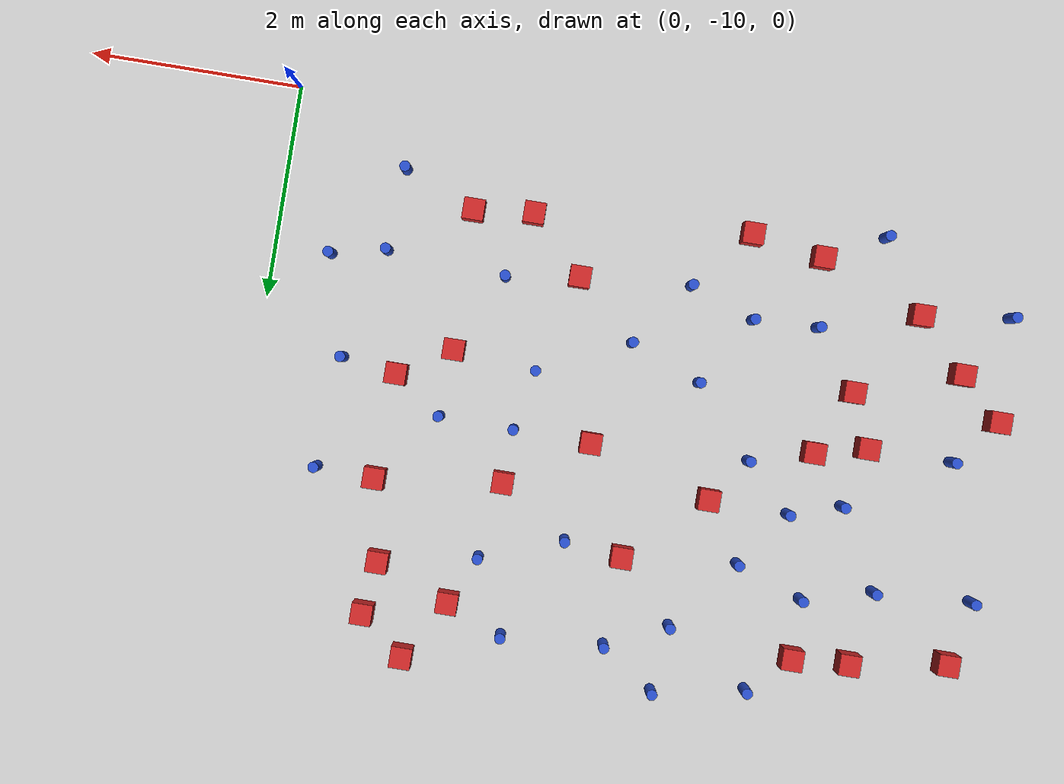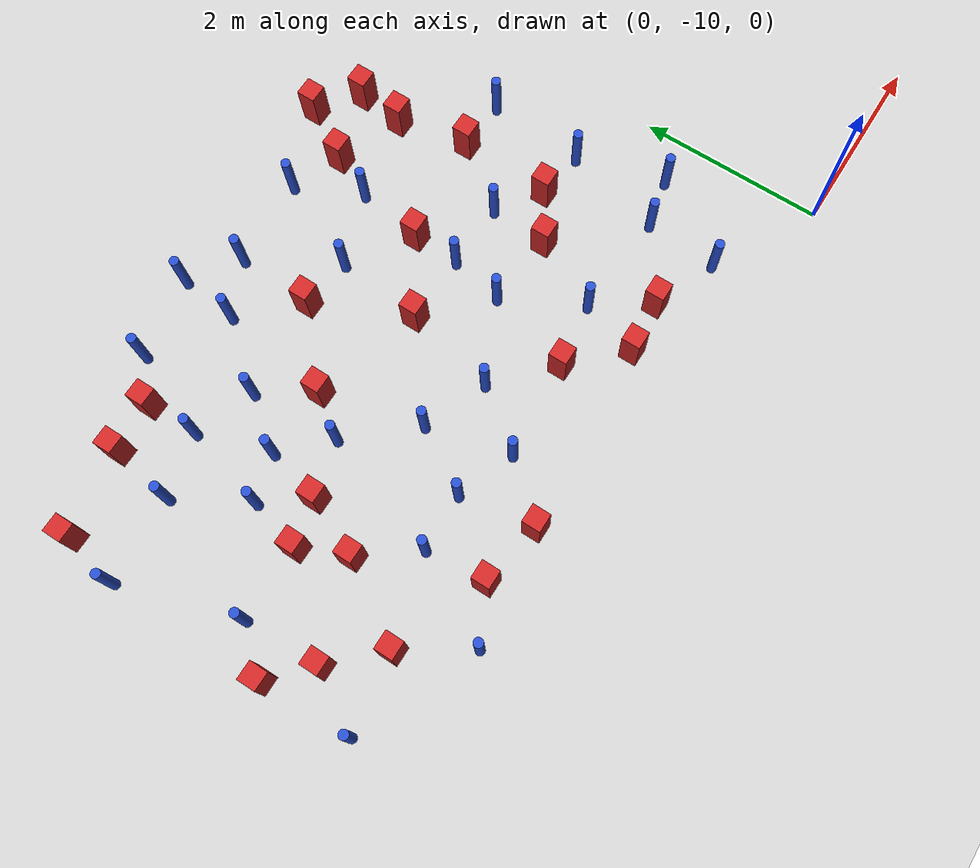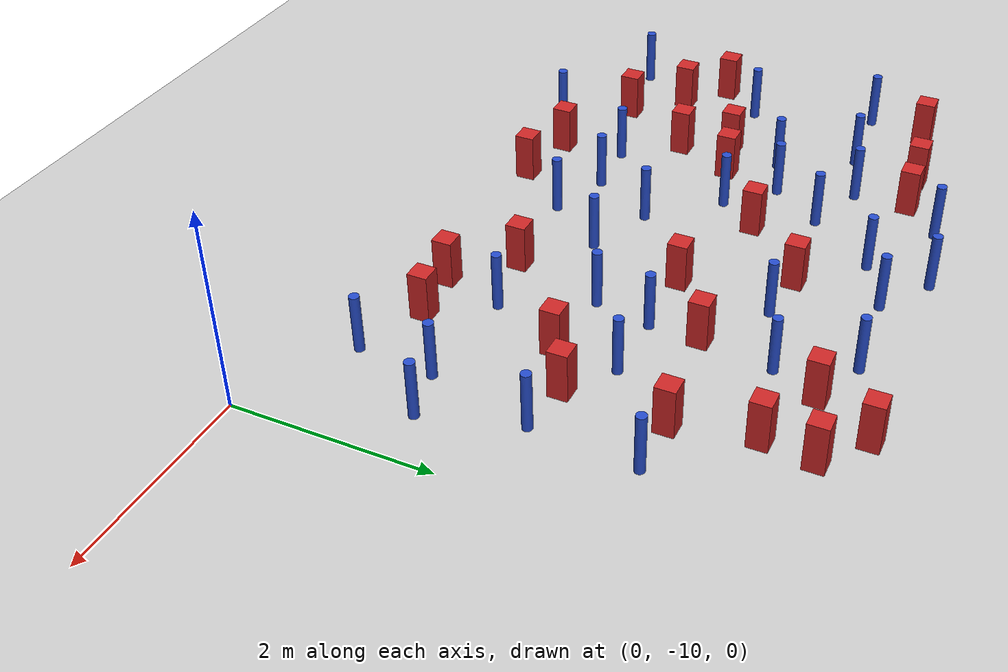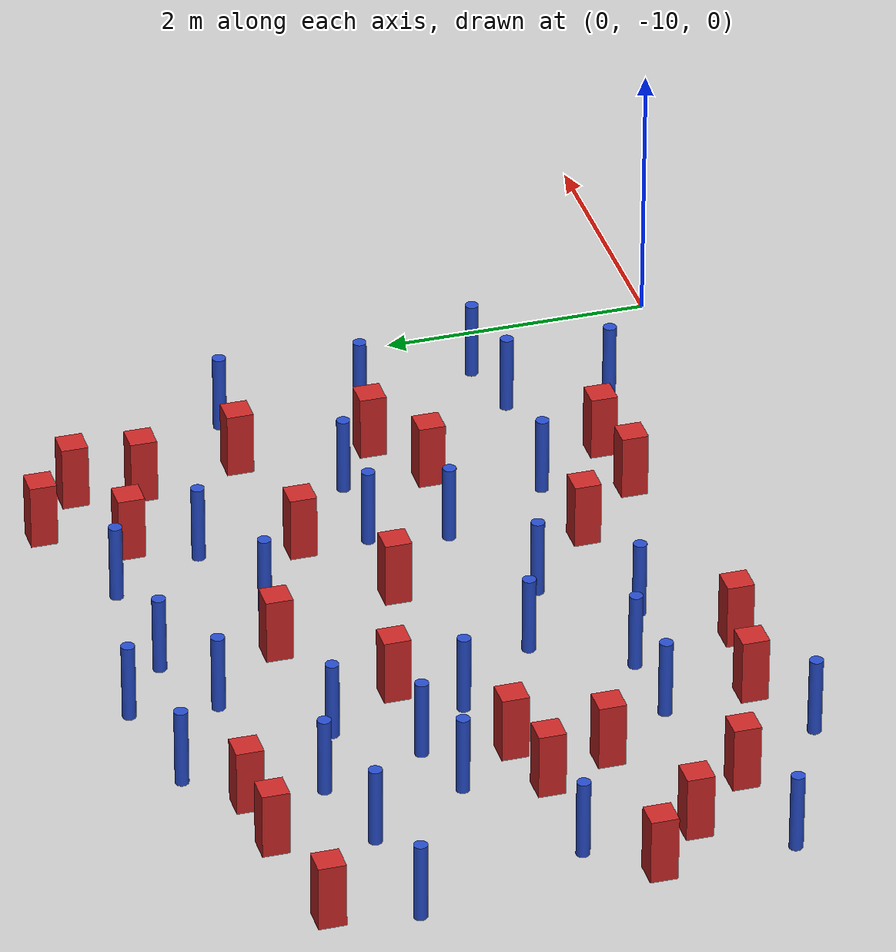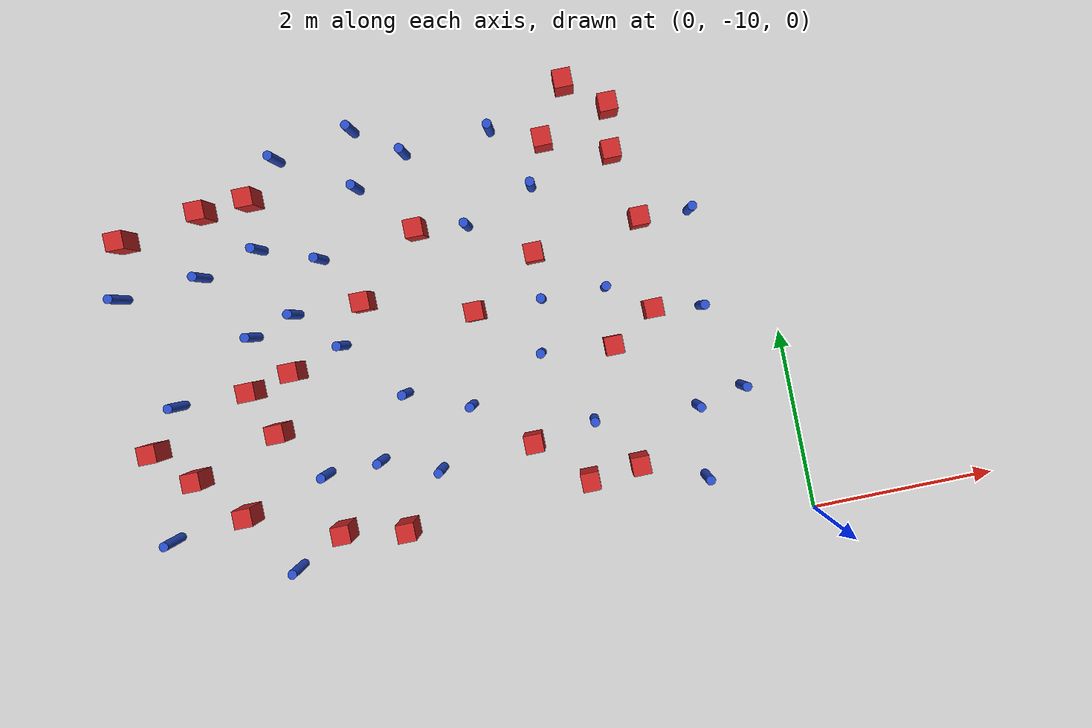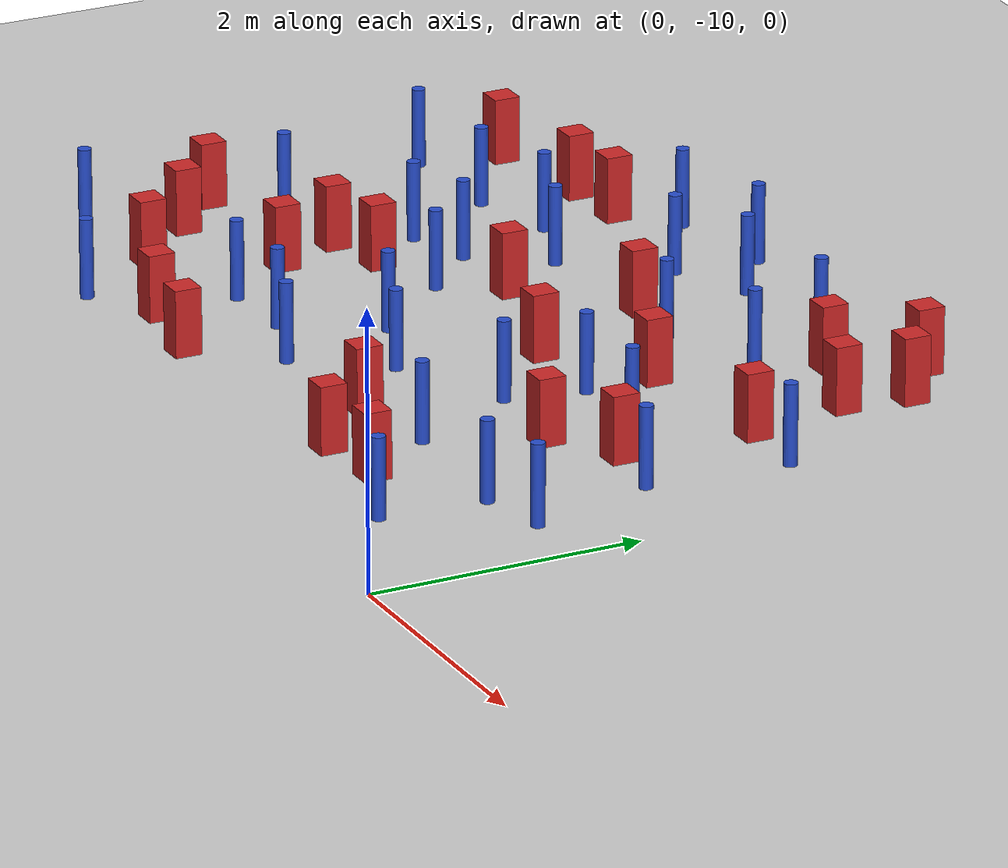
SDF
<sdf version="1.6">
 <world name="default">
  <model name="ground_plane">
   <static>1</static>
   <link name="link">
    <collision name="collision">
     <geometry><plane><normal>0 0 1</normal><size>100 100</size></plane></geometry>
     <surface><friction><ode><mu>100</mu><mu2>50</mu2></ode></friction></surface>
    </collision>
    <visual name="visual">
     <cast_shadows>0</cast_shadows>
     <geometry><plane><normal>0 0 1</normal><size>100 100</size></plane></geometry>
     <material>
      <ambient>1.0 1.0 1.0 1.0</ambient>
      <diffuse>0.8 0.8 0.8 1.0</diffuse>
      <specular>0.01 0.01 0.01 1.000000</specular>
     </material>
    </visual>
   </link>
  </model>
  <model name="square_post_obstacle4">
   <static>true</static>
   <pose>-6.85522388326 -5.62847621631 8.22691968438e-08 7.22125133819e-06 -7.54495500217e-07 2.29674213826e-05</pose>
   <link name="link">
    <pose>0 0 0.25 0 -0 0</pose>
    <inertial>
     <mass>100</mass>
     <inertia>
      <ixx>0.166667</ixx>
      <ixy>0</ixy>
      <ixz>0</ixz>
      <iyy>0.166667</iyy>
      <iyz>0</iyz>
      <izz>0.166667</izz>
     </inertia>
    </inertial>
    <collision name="collision"><geometry><box><size>.2 .2 .5</size></box></geometry></collision>
    <visual name="visual">
     <geometry><box><size>.2 .2 .5</size></box></geometry>
     <material>
      <script><name>Gazebo/Red</name><uri>file://media/materials/scripts/gazebo.material</uri></script>
     </material>
    </visual>
   </link>
  </model>
  <model name="pole_obstacle9">
   <static>true</static>
   <pose>-1.1136684123 -9.39230906978 2.88873142074e-08 -9.90536690474e-09 4.60219948974e-07 -1.2096599497e-07</pose>
   <link name="link">
    <pose>0 0 0.3 0 -0 0</pose>
    <inertial>
     <mass>1</mass>
     <inertia><ixx>0.145833</ixx><ixy>0</ixy><ixz>0</ixz><iyy>0.145833</iyy><iyz>0</iyz><izz>0.125</izz></inertia>
    </inertial>
    <collision name="collision">
     <geometry><cylinder><radius>0.05</radius><length>.6</length></cylinder></geometry>
    </collision>
    <visual name="visual">
     <geometry><cylinder><radius>0.05</radius><length>.6</length></cylinder></geometry>
     <material>
      <script><name>Gazebo/Blue</name><uri>file://media/materials/scripts/gazebo.material</uri></script>
     </material>
    </visual>
   </link>
  </model>
  <model name="square_post_obstacle8">
   <static>true</static>
   <pose>-5.94740173558 -5.48273162042 8.22691968438e-08 7.22125133819e-06 -7.54495500217e-07 2.29674213826e-05</pose>
   <link name="link">
    <pose>0 0 0.25 0 -0 0</pose>
    <inertial>
     <mass>100</mass>
     <inertia>
      <ixx>0.166667</ixx>
      <ixy>0</ixy>
      <ixz>0</ixz>
      <iyy>0.166667</iyy>
      <iyz>0</iyz>
      <izz>0.166667</izz>
     </inertia>
    </inertial>
    <collision name="collision"><geometry><box><size>.2 .2 .5</size></box></geometry></collision>
    <visual name="visual">
     <geometry><box><size>.2 .2 .5</size></box></geometry>
     <material>
      <script><name>Gazebo/Red</name><uri>file://media/materials/scripts/gazebo.material</uri></script>
     </material>
    </visual>
   </link>
  </model>
  <model name="square_post_obstacle10">
   <static>true</static>
   <pose>-3.69143356227 -6.1247353923 8.22691968438e-08 7.22125133819e-06 -7.54495500217e-07 2.29674213826e-05</pose>
   <link name="link">
    <pose>0 0 0.25 0 -0 0</pose>
    <inertial>
     <mass>100</mass>
     <inertia>
      <ixx>0.166667</ixx>
      <ixy>0</ixy>
      <ixz>0</ixz>
      <iyy>0.166667</iyy>
      <iyz>0</iyz>
      <izz>0.166667</izz>
     </inertia>
    </inertial>
    <collision name="collision"><geometry><box><size>.2 .2 .5</size></box></geometry></collision>
    <visual name="visual">
     <geometry><box><size>.2 .2 .5</size></box></geometry>
     <material>
      <script><name>Gazebo/Red</name><uri>file://media/materials/scripts/gazebo.material</uri></script>
     </material>
    </visual>
   </link>
  </model>
  <model name="pole_obstacle14">
   <static>true</static>
   <pose>-5.16681830971 -6.7704141858 2.88873142074e-08 -9.90536690842e-09 4.60219948965e-07 -1.20965994976e-07</pose>
   <link name="link">
    <pose>0 0 0.3 0 -0 0</pose>
    <inertial>
     <mass>1</mass>
     <inertia><ixx>0.145833</ixx><ixy>0</ixy><ixz>0</ixz><iyy>0.145833</iyy><iyz>0</iyz><izz>0.125</izz></inertia>
    </inertial>
    <collision name="collision">
     <geometry><cylinder><radius>0.05</radius><length>.6</length></cylinder></geometry>
    </collision>
    <visual name="visual">
     <geometry><cylinder><radius>0.05</radius><length>.6</length></cylinder></geometry>
     <material>
      <script><name>Gazebo/Blue</name><uri>file://media/materials/scripts/gazebo.material</uri></script>
     </material>
    </visual>
   </link>
  </model>
  <model name="pole_obstacle15">
   <static>true</static>
   <pose>-4.23528248232 -5.55599287549 2.88873142074e-08 -9.90536690842e-09 4.60219948965e-07 -1.20965994976e-07</pose>
   <link name="link">
    <pose>0 0 0.3 0 -0 0</pose>
    <inertial>
     <mass>1</mass>
     <inertia><ixx>0.145833</ixx><ixy>0</ixy><ixz>0</ixz><iyy>0.145833</iyy><iyz>0</iyz><izz>0.125</izz></inertia>
    </inertial>
    <collision name="collision">
     <geometry><cylinder><radius>0.05</radius><length>.6</length></cylinder></geometry>
    </collision>
    <visual name="visual">
     <geometry><cylinder><radius>0.05</radius><length>.6</length></cylinder></geometry>
     <material>
      <script><name>Gazebo/Blue</name><uri>file://media/materials/scripts/gazebo.material</uri></script>
     </material>
    </visual>
   </link>
  </model>
  <model name="pole_obstacle17">
   <static>true</static>
   <pose>-3.46691316281 -8.12460057241 2.88873142074e-08 -9.90536692318e-09 4.6021994893e-07 -1.20965994988e-07</pose>
   <link name="link">
    <pose>0 0 0.3 0 -0 0</pose>
    <inertial>
     <mass>1</mass>
     <inertia><ixx>0.145833</ixx><ixy>0</ixy><ixz>0</ixz><iyy>0.145833</iyy><iyz>0</iyz><izz>0.125</izz></inertia>
    </inertial>
    <collision name="collision">
     <geometry><cylinder><radius>0.05</radius><length>.6</length></cylinder></geometry>
    </collision>
    <visual name="visual">
     <geometry><cylinder><radius>0.05</radius><length>.6</length></cylinder></geometry>
     <material>
      <script><name>Gazebo/Blue</name><uri>file://media/materials/scripts/gazebo.material</uri></script>
     </material>
    </visual>
   </link>
  </model>
  <model name="square_post_obstacle25">
   <static>true</static>
   <pose>-6.09771948363 -8.8133086997 8.22691968438e-08 7.22125133819e-06 -7.54495500217e-07 2.29674213826e-05</pose>
   <link name="link">
    <pose>0 0 0.25 0 -0 0</pose>
    <inertial>
     <mass>100</mass>
     <inertia>
      <ixx>0.166667</ixx>
      <ixy>0</ixy>
      <ixz>0</ixz>
      <iyy>0.166667</iyy>
      <iyz>0</iyz>
      <izz>0.166667</izz>
     </inertia>
    </inertial>
    <collision name="collision"><geometry><box><size>.2 .2 .5</size></box></geometry></collision>
    <visual name="visual">
     <geometry><box><size>.2 .2 .5</size></box></geometry>
     <material>
      <script><name>Gazebo/Red</name><uri>file://media/materials/scripts/gazebo.material</uri></script>
     </material>
    </visual>
   </link>
  </model>
  <model name="pole_obstacle34">
   <static>true</static>
   <pose>-6.60826253729 -7.50212114259 2.88873142074e-08 -9.90536690842e-09 4.60219948965e-07 -1.20965994976e-07</pose>
   <link name="link">
    <pose>0 0 0.3 0 -0 0</pose>
    <inertial>
     <mass>1</mass>
     <inertia><ixx>0.145833</ixx><ixy>0</ixy><ixz>0</ixz><iyy>0.145833</iyy><iyz>0</iyz><izz>0.125</izz></inertia>
    </inertial>
    <collision name="collision">
     <geometry><cylinder><radius>0.05</radius><length>.6</length></cylinder></geometry>
    </collision>
    <visual name="visual">
     <geometry><cylinder><radius>0.05</radius><length>.6</length></cylinder></geometry>
     <material>
      <script><name>Gazebo/Blue</name><uri>file://media/materials/scripts/gazebo.material</uri></script>
     </material>
    </visual>
   </link>
  </model>
  <model name="pole_obstacle40">
   <static>true</static>
   <pose>-4.77382062797 -6.23509874252 2.88873142074e-08 -9.90536690842e-09 4.60219948965e-07 -1.20965994976e-07</pose>
   <link name="link">
    <pose>0 0 0.3 0 -0 0</pose>
    <inertial>
     <mass>1</mass>
     <inertia><ixx>0.145833</ixx><ixy>0</ixy><ixz>0</ixz><iyy>0.145833</iyy><iyz>0</iyz><izz>0.125</izz></inertia>
    </inertial>
    <collision name="collision">
     <geometry><cylinder><radius>0.05</radius><length>.6</length></cylinder></geometry>
    </collision>
    <visual name="visual">
     <geometry><cylinder><radius>0.05</radius><length>.6</length></cylinder></geometry>
     <material>
      <script><name>Gazebo/Blue</name><uri>file://media/materials/scripts/gazebo.material</uri></script>
     </material>
    </visual>
   </link>
  </model>
  <model name="pole_obstacle42">
   <static>true</static>
   <pose>-4.14624531875 -7.8563380959 2.88873142074e-08 -9.90536690842e-09 4.60219948965e-07 -1.20965994976e-07</pose>
   <link name="link">
    <pose>0 0 0.3 0 -0 0</pose>
    <inertial>
     <mass>1</mass>
     <inertia><ixx>0.145833</ixx><ixy>0</ixy><ixz>0</ixz><iyy>0.145833</iyy><iyz>0</iyz><izz>0.125</izz></inertia>
    </inertial>
    <collision name="collision">
     <geometry><cylinder><radius>0.05</radius><length>.6</length></cylinder></geometry>
    </collision>
    <visual name="visual">
     <geometry><cylinder><radius>0.05</radius><length>.6</length></cylinder></geometry>
     <material>
      <script><name>Gazebo/Blue</name><uri>file://media/materials/scripts/gazebo.material</uri></script>
     </material>
    </visual>
   </link>
  </model>
  <model name="pole_obstacle44">
   <static>true</static>
   <pose>-0.538254082828 -8.49658072212 2.88873142074e-08 -9.90536691171e-09 4.60219948957e-07 -1.20965994981e-07</pose>
   <link name="link">
    <pose>0 0 0.3 0 -0 0</pose>
    <inertial>
     <mass>1</mass>
     <inertia><ixx>0.145833</ixx><ixy>0</ixy><ixz>0</ixz><iyy>0.145833</iyy><iyz>0</iyz><izz>0.125</izz></inertia>
    </inertial>
    <collision name="collision">
     <geometry><cylinder><radius>0.05</radius><length>.6</length></cylinder></geometry>
    </collision>
    <visual name="visual">
     <geometry><cylinder><radius>0.05</radius><length>.6</length></cylinder></geometry>
     <material>
      <script><name>Gazebo/Blue</name><uri>file://media/materials/scripts/gazebo.material</uri></script>
     </material>
    </visual>
   </link>
  </model>
  <model name="square_post_obstacle35">
   <static>true</static>
   <pose>-1.28788467197 -6.48226876722 8.22691968438e-08 7.2212513382e-06 -7.54495500217e-07 2.29674213826e-05</pose>
   <link name="link">
    <pose>0 0 0.25 0 -0 0</pose>
    <inertial>
     <mass>100</mass>
     <inertia>
      <ixx>0.166667</ixx>
      <ixy>0</ixy>
      <ixz>0</ixz>
      <iyy>0.166667</iyy>
      <iyz>0</iyz>
      <izz>0.166667</izz>
     </inertia>
    </inertial>
    <collision name="collision"><geometry><box><size>.2 .2 .5</size></box></geometry></collision>
    <visual name="visual">
     <geometry><box><size>.2 .2 .5</size></box></geometry>
     <material>
      <script><name>Gazebo/Red</name><uri>file://media/materials/scripts/gazebo.material</uri></script>
     </material>
    </visual>
   </link>
  </model>
  <model name="pole_obstacle62">
   <static>true</static>
   <pose>-3.65709495357 -5.27973603258 2.88873142074e-08 -9.90536692062e-09 4.60219948937e-07 -1.20965994985e-07</pose>
   <link name="link">
    <pose>0 0 0.3 0 -0 0</pose>
    <inertial>
     <mass>1</mass>
     <inertia><ixx>0.145833</ixx><ixy>0</ixy><ixz>0</ixz><iyy>0.145833</iyy><iyz>0</iyz><izz>0.125</izz></inertia>
    </inertial>
    <collision name="collision">
     <geometry><cylinder><radius>0.05</radius><length>.6</length></cylinder></geometry>
    </collision>
    <visual name="visual">
     <geometry><cylinder><radius>0.05</radius><length>.6</length></cylinder></geometry>
     <material>
      <script><name>Gazebo/Blue</name><uri>file://media/materials/scripts/gazebo.material</uri></script>
     </material>
    </visual>
   </link>
  </model>
  <model name="pole_obstacle63">
   <static>true</static>
   <pose>-5.66128667086 -9.48588784049 2.88873142074e-08 -9.9053668967e-09 4.60219948993e-07 -1.20965994957e-07</pose>
   <link name="link">
    <pose>0 0 0.3 0 -0 0</pose>
    <inertial>
     <mass>1</mass>
     <inertia><ixx>0.145833</ixx><ixy>0</ixy><ixz>0</ixz><iyy>0.145833</iyy><iyz>0</iyz><izz>0.125</izz></inertia>
    </inertial>
    <collision name="collision">
     <geometry><cylinder><radius>0.05</radius><length>.6</length></cylinder></geometry>
    </collision>
    <visual name="visual">
     <geometry><cylinder><radius>0.05</radius><length>.6</length></cylinder></geometry>
     <material>
      <script><name>Gazebo/Blue</name><uri>file://media/materials/scripts/gazebo.material</uri></script>
     </material>
    </visual>
   </link>
  </model>
  <model name="pole_obstacle65">
   <static>true</static>
   <pose>-0.804808147078 -7.55309677952 2.88873142074e-08 -9.90536689661e-09 4.60219948993e-07 -1.20965994957e-07</pose>
   <link name="link">
    <pose>0 0 0.3 0 -0 0</pose>
    <inertial>
     <mass>1</mass>
     <inertia><ixx>0.145833</ixx><ixy>0</ixy><ixz>0</ixz><iyy>0.145833</iyy><iyz>0</iyz><izz>0.125</izz></inertia>
    </inertial>
    <collision name="collision">
     <geometry><cylinder><radius>0.05</radius><length>.6</length></cylinder></geometry>
    </collision>
    <visual name="visual">
     <geometry><cylinder><radius>0.05</radius><length>.6</length></cylinder></geometry>
     <material>
      <script><name>Gazebo/Blue</name><uri>file://media/materials/scripts/gazebo.material</uri></script>
     </material>
    </visual>
   </link>
  </model>
  <model name="square_post_obstacle52">
   <static>true</static>
   <pose>-1.80784929938 -4.87397592157 8.22691968438e-08 7.2212513382e-06 -7.54495500217e-07 2.29674213826e-05</pose>
   <link name="link">
    <pose>0 0 0.25 0 -0 0</pose>
    <inertial>
     <mass>100</mass>
     <inertia>
      <ixx>0.166667</ixx>
      <ixy>0</ixy>
      <ixz>0</ixz>
      <iyy>0.166667</iyy>
      <iyz>0</iyz>
      <izz>0.166667</izz>
     </inertia>
    </inertial>
    <collision name="collision"><geometry><box><size>.2 .2 .5</size></box></geometry></collision>
    <visual name="visual">
     <geometry><box><size>.2 .2 .5</size></box></geometry>
     <material>
      <script><name>Gazebo/Red</name><uri>file://media/materials/scripts/gazebo.material</uri></script>
     </material>
    </visual>
   </link>
  </model>
  <model name="pole_obstacle71">
   <static>true</static>
   <pose>-1.79159454964 -7.15082651073 2.88873142074e-08 -9.90536689852e-09 4.60219948989e-07 -1.2096599496e-07</pose>
   <link name="link">
    <pose>0 0 0.3 0 -0 0</pose>
    <inertial>
     <mass>1</mass>
     <inertia><ixx>0.145833</ixx><ixy>0</ixy><ixz>0</ixz><iyy>0.145833</iyy><iyz>0</iyz><izz>0.125</izz></inertia>
    </inertial>
    <collision name="collision">
     <geometry><cylinder><radius>0.05</radius><length>.6</length></cylinder></geometry>
    </collision>
    <visual name="visual">
     <geometry><cylinder><radius>0.05</radius><length>.6</length></cylinder></geometry>
     <material>
      <script><name>Gazebo/Blue</name><uri>file://media/materials/scripts/gazebo.material</uri></script>
     </material>
    </visual>
   </link>
  </model>
  <model name="square_post_obstacle69">
   <static>true</static>
   <pose>-5.3090469905 -7.38036986138 8.22691968438e-08 7.22125133819e-06 -7.54495500217e-07 2.29674213826e-05</pose>
   <link name="link">
    <pose>0 0 0.25 0 -0 0</pose>
    <inertial>
     <mass>100</mass>
     <inertia>
      <ixx>0.166667</ixx>
      <ixy>0</ixy>
      <ixz>0</ixz>
      <iyy>0.166667</iyy>
      <iyz>0</iyz>
      <izz>0.166667</izz>
     </inertia>
    </inertial>
    <collision name="collision"><geometry><box><size>.2 .2 .5</size></box></geometry></collision>
    <visual name="visual">
     <geometry><box><size>.2 .2 .5</size></box></geometry>
     <material>
      <script><name>Gazebo/Red</name><uri>file://media/materials/scripts/gazebo.material</uri></script>
     </material>
    </visual>
   </link>
  </model>
  <model name="pole_obstacle82">
   <static>true</static>
   <pose>-2.49903152507 -7.13973045183 2.88873142074e-08 -9.90536689859e-09 4.60219948989e-07 -1.20965994961e-07</pose>
   <link name="link">
    <pose>0 0 0.3 0 -0 0</pose>
    <inertial>
     <mass>1</mass>
     <inertia><ixx>0.145833</ixx><ixy>0</ixy><ixz>0</ixz><iyy>0.145833</iyy><iyz>0</iyz><izz>0.125</izz></inertia>
    </inertial>
    <collision name="collision">
     <geometry><cylinder><radius>0.05</radius><length>.6</length></cylinder></geometry>
    </collision>
    <visual name="visual">
     <geometry><cylinder><radius>0.05</radius><length>.6</length></cylinder></geometry>
     <material>
      <script><name>Gazebo/Blue</name><uri>file://media/materials/scripts/gazebo.material</uri></script>
     </material>
    </visual>
   </link>
  </model>
  <model name="pole_obstacle88">
   <static>true</static>
   <pose>-6.99789093581 -6.23372935223 2.88873142074e-08 -9.90536690842e-09 4.60219948965e-07 -1.20965994976e-07</pose>
   <link name="link">
    <pose>0 0 0.3 0 -0 0</pose>
    <inertial>
     <mass>1</mass>
     <inertia><ixx>0.145833</ixx><ixy>0</ixy><ixz>0</ixz><iyy>0.145833</iyy><iyz>0</iyz><izz>0.125</izz></inertia>
    </inertial>
    <collision name="collision">
     <geometry><cylinder><radius>0.05</radius><length>.6</length></cylinder></geometry>
    </collision>
    <visual name="visual">
     <geometry><cylinder><radius>0.05</radius><length>.6</length></cylinder></geometry>
     <material>
      <script><name>Gazebo/Blue</name><uri>file://media/materials/scripts/gazebo.material</uri></script>
     </material>
    </visual>
   </link>
  </model>
  <model name="square_post_obstacle81">
   <static>true</static>
   <pose>-2.88410339345 -8.65131509459 8.22691968438e-08 7.22125133819e-06 -7.54495500217e-07 2.29674213826e-05</pose>
   <link name="link">
    <pose>0 0 0.25 0 -0 0</pose>
    <inertial>
     <mass>100</mass>
     <inertia>
      <ixx>0.166667</ixx>
      <ixy>0</ixy>
      <ixz>0</ixz>
      <iyy>0.166667</iyy>
      <iyz>0</iyz>
      <izz>0.166667</izz>
     </inertia>
    </inertial>
    <collision name="collision"><geometry><box><size>.2 .2 .5</size></box></geometry></collision>
    <visual name="visual">
     <geometry><box><size>.2 .2 .5</size></box></geometry>
     <material>
      <script><name>Gazebo/Red</name><uri>file://media/materials/scripts/gazebo.material</uri></script>
     </material>
    </visual>
   </link>
  </model>
  <model name="square_post_obstacle96">
   <static>true</static>
   <pose>-2.36612711153 -9.16956747678 8.22691968438e-08 7.22125133819e-06 -7.54495500217e-07 2.29674213826e-05</pose>
   <link name="link">
    <pose>0 0 0.25 0 -0 0</pose>
    <inertial>
     <mass>100</mass>
     <inertia>
      <ixx>0.166667</ixx>
      <ixy>0</ixy>
      <ixz>0</ixz>
      <iyy>0.166667</iyy>
      <iyz>0</iyz>
      <izz>0.166667</izz>
     </inertia>
    </inertial>
    <collision name="collision"><geometry><box><size>.2 .2 .5</size></box></geometry></collision>
    <visual name="visual">
     <geometry><box><size>.2 .2 .5</size></box></geometry>
     <material>
      <script><name>Gazebo/Red</name><uri>file://media/materials/scripts/gazebo.material</uri></script>
     </material>
    </visual>
   </link>
  </model>
  <model name="pole_obstacle110">
   <static>true</static>
   <pose>-5.41165586207 -6.00140465897 2.88873142074e-08 -9.90536690842e-09 4.60219948965e-07 -1.20965994976e-07</pose>
   <link name="link">
    <pose>0 0 0.3 0 -0 0</pose>
    <inertial>
     <mass>1</mass>
     <inertia><ixx>0.145833</ixx><ixy>0</ixy><ixz>0</ixz><iyy>0.145833</iyy><iyz>0</iyz><izz>0.125</izz></inertia>
    </inertial>
    <collision name="collision">
     <geometry><cylinder><radius>0.05</radius><length>.6</length></cylinder></geometry>
    </collision>
    <visual name="visual">
     <geometry><cylinder><radius>0.05</radius><length>.6</length></cylinder></geometry>
     <material>
      <script><name>Gazebo/Blue</name><uri>file://media/materials/scripts/gazebo.material</uri></script>
     </material>
    </visual>
   </link>
  </model>
  <model name="square_post_obstacle107">
   <static>true</static>
   <pose>-6.56491261087 -8.32583265598 8.22691968438e-08 7.22125133819e-06 -7.54495500217e-07 2.29674213826e-05</pose>
   <link name="link">
    <pose>0 0 0.25 0 -0 0</pose>
    <inertial>
     <mass>100</mass>
     <inertia>
      <ixx>0.166667</ixx>
      <ixy>0</ixy>
      <ixz>0</ixz>
      <iyy>0.166667</iyy>
      <iyz>0</iyz>
      <izz>0.166667</izz>
     </inertia>
    </inertial>
    <collision name="collision"><geometry><box><size>.2 .2 .5</size></box></geometry></collision>
    <visual name="visual">
     <geometry><box><size>.2 .2 .5</size></box></geometry>
     <material>
      <script><name>Gazebo/Red</name><uri>file://media/materials/scripts/gazebo.material</uri></script>
     </material>
    </visual>
   </link>
  </model>
  <model name="square_post_obstacle111">
   <static>true</static>
   <pose>-5.58417348052 -7.99954667227 8.22691968438e-08 7.2212513382e-06 -7.54495500217e-07 2.29674213826e-05</pose>
   <link name="link">
    <pose>0 0 0.25 0 -0 0</pose>
    <inertial>
     <mass>100</mass>
     <inertia>
      <ixx>0.166667</ixx>
      <ixy>0</ixy>
      <ixz>0</ixz>
      <iyy>0.166667</iyy>
      <iyz>0</iyz>
      <izz>0.166667</izz>
     </inertia>
    </inertial>
    <collision name="collision"><geometry><box><size>.2 .2 .5</size></box></geometry></collision>
    <visual name="visual">
     <geometry><box><size>.2 .2 .5</size></box></geometry>
     <material>
      <script><name>Gazebo/Red</name><uri>file://media/materials/scripts/gazebo.material</uri></script>
     </material>
    </visual>
   </link>
  </model>
  <model name="square_post_obstacle115">
   <static>true</static>
   <pose>-1.82879084314 -7.78745326476 8.22691968438e-08 7.2212513382e-06 -7.54495500217e-07 2.29674213826e-05</pose>
   <link name="link">
    <pose>0 0 0.25 0 -0 0</pose>
    <inertial>
     <mass>100</mass>
     <inertia>
      <ixx>0.166667</ixx>
      <ixy>0</ixy>
      <ixz>0</ixz>
      <iyy>0.166667</iyy>
      <iyz>0</iyz>
      <izz>0.166667</izz>
     </inertia>
    </inertial>
    <collision name="collision"><geometry><box><size>.2 .2 .5</size></box></geometry></collision>
    <visual name="visual">
     <geometry><box><size>.2 .2 .5</size></box></geometry>
     <material>
      <script><name>Gazebo/Red</name><uri>file://media/materials/scripts/gazebo.material</uri></script>
     </material>
    </visual>
   </link>
  </model>
  <model name="pole_obstacle120">
   <static>true</static>
   <pose>-3.93052158698 -8.74405047283 2.88873142074e-08 -9.90536692318e-09 4.6021994893e-07 -1.20965994988e-07</pose>
   <link name="link">
    <pose>0 0 0.3 0 -0 0</pose>
    <inertial>
     <mass>1</mass>
     <inertia><ixx>0.145833</ixx><ixy>0</ixy><ixz>0</ixz><iyy>0.145833</iyy><iyz>0</iyz><izz>0.125</izz></inertia>
    </inertial>
    <collision name="collision">
     <geometry><cylinder><radius>0.05</radius><length>.6</length></cylinder></geometry>
    </collision>
    <visual name="visual">
     <geometry><cylinder><radius>0.05</radius><length>.6</length></cylinder></geometry>
     <material>
      <script><name>Gazebo/Blue</name><uri>file://media/materials/scripts/gazebo.material</uri></script>
     </material>
    </visual>
   </link>
  </model>
  <model name="square_post_obstacle121">
   <static>true</static>
   <pose>-1.33292672215 -7.47956581532 8.22691968438e-08 7.2212513382e-06 -7.54495500217e-07 2.29674213826e-05</pose>
   <link name="link">
    <pose>0 0 0.25 0 -0 0</pose>
    <inertial>
     <mass>100</mass>
     <inertia>
      <ixx>0.166667</ixx>
      <ixy>0</ixy>
      <ixz>0</ixz>
      <iyy>0.166667</iyy>
      <iyz>0</iyz>
      <izz>0.166667</izz>
     </inertia>
    </inertial>
    <collision name="collision"><geometry><box><size>.2 .2 .5</size></box></geometry></collision>
    <visual name="visual">
     <geometry><box><size>.2 .2 .5</size></box></geometry>
     <material>
      <script><name>Gazebo/Red</name><uri>file://media/materials/scripts/gazebo.material</uri></script>
     </material>
    </visual>
   </link>
  </model>
  <model name="pole_obstacle122">
   <static>true</static>
   <pose>-4.55003173448 -8.51977405637 2.88873142074e-08 -9.9053668967e-09 4.60219948993e-07 -1.20965994957e-07</pose>
   <link name="link">
    <pose>0 0 0.3 0 -0 0</pose>
    <inertial>
     <mass>1</mass>
     <inertia><ixx>0.145833</ixx><ixy>0</ixy><ixz>0</ixz><iyy>0.145833</iyy><iyz>0</iyz><izz>0.125</izz></inertia>
    </inertial>
    <collision name="collision">
     <geometry><cylinder><radius>0.05</radius><length>.6</length></cylinder></geometry>
    </collision>
    <visual name="visual">
     <geometry><cylinder><radius>0.05</radius><length>.6</length></cylinder></geometry>
     <material>
      <script><name>Gazebo/Blue</name><uri>file://media/materials/scripts/gazebo.material</uri></script>
     </material>
    </visual>
   </link>
  </model>
  <model name="pole_obstacle124">
   <static>true</static>
   <pose>-6.93954913773 -8.92759738936 2.88873142074e-08 -9.9053668967e-09 4.60219948993e-07 -1.20965994957e-07</pose>
   <link name="link">
    <pose>0 0 0.3 0 -0 0</pose>
    <inertial>
     <mass>1</mass>
     <inertia><ixx>0.145833</ixx><ixy>0</ixy><ixz>0</ixz><iyy>0.145833</iyy><iyz>0</iyz><izz>0.125</izz></inertia>
    </inertial>
    <collision name="collision">
     <geometry><cylinder><radius>0.05</radius><length>.6</length></cylinder></geometry>
    </collision>
    <visual name="visual">
     <geometry><cylinder><radius>0.05</radius><length>.6</length></cylinder></geometry>
     <material>
      <script><name>Gazebo/Blue</name><uri>file://media/materials/scripts/gazebo.material</uri></script>
     </material>
    </visual>
   </link>
  </model>
  <model name="square_post_obstacle122">
   <static>true</static>
   <pose>-1.44527809792 -5.71499060345 8.22691968438e-08 7.2212513382e-06 -7.54495500217e-07 2.29674213826e-05</pose>
   <link name="link">
    <pose>0 0 0.25 0 -0 0</pose>
    <inertial>
     <mass>100</mass>
     <inertia>
      <ixx>0.166667</ixx>
      <ixy>0</ixy>
      <ixz>0</ixz>
      <iyy>0.166667</iyy>
      <iyz>0</iyz>
      <izz>0.166667</izz>
     </inertia>
    </inertial>
    <collision name="collision"><geometry><box><size>.2 .2 .5</size></box></geometry></collision>
    <visual name="visual">
     <geometry><box><size>.2 .2 .5</size></box></geometry>
     <material>
      <script><name>Gazebo/Red</name><uri>file://media/materials/scripts/gazebo.material</uri></script>
     </material>
    </visual>
   </link>
  </model>
  <model name="pole_obstacle129">
   <static>true</static>
   <pose>-3.14080431187 -6.18959196502 2.88873142074e-08 -9.90536689859e-09 4.60219948989e-07 -1.20965994961e-07</pose>
   <link name="link">
    <pose>0 0 0.3 0 -0 0</pose>
    <inertial>
     <mass>1</mass>
     <inertia><ixx>0.145833</ixx><ixy>0</ixy><ixz>0</ixz><iyy>0.145833</iyy><iyz>0</iyz><izz>0.125</izz></inertia>
    </inertial>
    <collision name="collision">
     <geometry><cylinder><radius>0.05</radius><length>.6</length></cylinder></geometry>
    </collision>
    <visual name="visual">
     <geometry><cylinder><radius>0.05</radius><length>.6</length></cylinder></geometry>
     <material>
      <script><name>Gazebo/Blue</name><uri>file://media/materials/scripts/gazebo.material</uri></script>
     </material>
    </visual>
   </link>
  </model>
  <model name="pole_obstacle130">
   <static>true</static>
   <pose>-5.16405642868 -8.54834443808 2.88873142074e-08 -9.9053668967e-09 4.60219948993e-07 -1.20965994957e-07</pose>
   <link name="link">
    <pose>0 0 0.3 0 -0 0</pose>
    <inertial>
     <mass>1</mass>
     <inertia><ixx>0.145833</ixx><ixy>0</ixy><ixz>0</ixz><iyy>0.145833</iyy><iyz>0</iyz><izz>0.125</izz></inertia>
    </inertial>
    <collision name="collision">
     <geometry><cylinder><radius>0.05</radius><length>.6</length></cylinder></geometry>
    </collision>
    <visual name="visual">
     <geometry><cylinder><radius>0.05</radius><length>.6</length></cylinder></geometry>
     <material>
      <script><name>Gazebo/Blue</name><uri>file://media/materials/scripts/gazebo.material</uri></script>
     </material>
    </visual>
   </link>
  </model>
  <model name="pole_obstacle132">
   <static>true</static>
   <pose>-4.72189298213 -7.20642369619 2.88873142074e-08 -9.90536690842e-09 4.60219948965e-07 -1.20965994976e-07</pose>
   <link name="link">
    <pose>0 0 0.3 0 -0 0</pose>
    <inertial>
     <mass>1</mass>
     <inertia><ixx>0.145833</ixx><ixy>0</ixy><ixz>0</ixz><iyy>0.145833</iyy><iyz>0</iyz><izz>0.125</izz></inertia>
    </inertial>
    <collision name="collision">
     <geometry><cylinder><radius>0.05</radius><length>.6</length></cylinder></geometry>
    </collision>
    <visual name="visual">
     <geometry><cylinder><radius>0.05</radius><length>.6</length></cylinder></geometry>
     <material>
      <script><name>Gazebo/Blue</name><uri>file://media/materials/scripts/gazebo.material</uri></script>
     </material>
    </visual>
   </link>
  </model>
  <model name="square_post_obstacle130">
   <static>true</static>
   <pose>-4.40828834072 -6.78636707618 8.22691968438e-08 7.2212513382e-06 -7.54495500217e-07 2.29674213826e-05</pose>
   <link name="link">
    <pose>0 0 0.25 0 -0 0</pose>
    <inertial>
     <mass>100</mass>
     <inertia>
      <ixx>0.166667</ixx>
      <ixy>0</ixy>
      <ixz>0</ixz>
      <iyy>0.166667</iyy>
      <iyz>0</iyz>
      <izz>0.166667</izz>
     </inertia>
    </inertial>
    <collision name="collision"><geometry><box><size>.2 .2 .5</size></box></geometry></collision>
    <visual name="visual">
     <geometry><box><size>.2 .2 .5</size></box></geometry>
     <material>
      <script><name>Gazebo/Red</name><uri>file://media/materials/scripts/gazebo.material</uri></script>
     </material>
    </visual>
   </link>
  </model>
  <model name="pole_obstacle137">
   <static>true</static>
   <pose>-6.07595364959 -6.17778750994 2.88873142074e-08 -9.90536690842e-09 4.60219948965e-07 -1.20965994976e-07</pose>
   <link name="link">
    <pose>0 0 0.3 0 -0 0</pose>
    <inertial>
     <mass>1</mass>
     <inertia><ixx>0.145833</ixx><ixy>0</ixy><ixz>0</ixz><iyy>0.145833</iyy><iyz>0</iyz><izz>0.125</izz></inertia>
    </inertial>
    <collision name="collision">
     <geometry><cylinder><radius>0.05</radius><length>.6</length></cylinder></geometry>
    </collision>
    <visual name="visual">
     <geometry><cylinder><radius>0.05</radius><length>.6</length></cylinder></geometry>
     <material>
      <script><name>Gazebo/Blue</name><uri>file://media/materials/scripts/gazebo.material</uri></script>
     </material>
    </visual>
   </link>
  </model>
  <model name="pole_obstacle140">
   <static>true</static>
   <pose>-5.6579790328 -6.92487632571 2.88873142074e-08 -9.90536690842e-09 4.60219948965e-07 -1.20965994976e-07</pose>
   <link name="link">
    <pose>0 0 0.3 0 -0 0</pose>
    <inertial>
     <mass>1</mass>
     <inertia><ixx>0.145833</ixx><ixy>0</ixy><ixz>0</ixz><iyy>0.145833</iyy><iyz>0</iyz><izz>0.125</izz></inertia>
    </inertial>
    <collision name="collision">
     <geometry><cylinder><radius>0.05</radius><length>.6</length></cylinder></geometry>
    </collision>
    <visual name="visual">
     <geometry><cylinder><radius>0.05</radius><length>.6</length></cylinder></geometry>
     <material>
      <script><name>Gazebo/Blue</name><uri>file://media/materials/scripts/gazebo.material</uri></script>
     </material>
    </visual>
   </link>
  </model>
  <model name="square_post_obstacle137">
   <static>true</static>
   <pose>-6.96642257762 -7.94130477543 8.22691968438e-08 7.2212513382e-06 -7.54495500217e-07 2.29674213826e-05</pose>
   <link name="link">
    <pose>0 0 0.25 0 -0 0</pose>
    <inertial>
     <mass>100</mass>
     <inertia>
      <ixx>0.166667</ixx>
      <ixy>0</ixy>
      <ixz>0</ixz>
      <iyy>0.166667</iyy>
      <iyz>0</iyz>
      <izz>0.166667</izz>
     </inertia>
    </inertial>
    <collision name="collision"><geometry><box><size>.2 .2 .5</size></box></geometry></collision>
    <visual name="visual">
     <geometry><box><size>.2 .2 .5</size></box></geometry>
     <material>
      <script><name>Gazebo/Red</name><uri>file://media/materials/scripts/gazebo.material</uri></script>
     </material>
    </visual>
   </link>
  </model>
  <model name="square_post_obstacle148">
   <static>true</static>
   <pose>-2.48179827279 -6.63326699635 8.22691968438e-08 7.22125133819e-06 -7.54495500217e-07 2.29674213826e-05</pose>
   <link name="link">
    <pose>0 0 0.25 0 -0 0</pose>
    <inertial>
     <mass>100</mass>
     <inertia>
      <ixx>0.166667</ixx>
      <ixy>0</ixy>
      <ixz>0</ixz>
      <iyy>0.166667</iyy>
      <iyz>0</iyz>
      <izz>0.166667</izz>
     </inertia>
    </inertial>
    <collision name="collision"><geometry><box><size>.2 .2 .5</size></box></geometry></collision>
    <visual name="visual">
     <geometry><box><size>.2 .2 .5</size></box></geometry>
     <material>
      <script><name>Gazebo/Red</name><uri>file://media/materials/scripts/gazebo.material</uri></script>
     </material>
    </visual>
   </link>
  </model>
  <model name="square_post_obstacle154">
   <static>true</static>
   <pose>-1.38231103669 -5.21514424641 8.22691968438e-08 7.2212513382e-06 -7.54495500217e-07 2.29674213826e-05</pose>
   <link name="link">
    <pose>0 0 0.25 0 -0 0</pose>
    <inertial>
     <mass>100</mass>
     <inertia>
      <ixx>0.166667</ixx>
      <ixy>0</ixy>
      <ixz>0</ixz>
      <iyy>0.166667</iyy>
      <iyz>0</iyz>
      <izz>0.166667</izz>
     </inertia>
    </inertial>
    <collision name="collision"><geometry><box><size>.2 .2 .5</size></box></geometry></collision>
    <visual name="visual">
     <geometry><box><size>.2 .2 .5</size></box></geometry>
     <material>
      <script><name>Gazebo/Red</name><uri>file://media/materials/scripts/gazebo.material</uri></script>
     </material>
    </visual>
   </link>
  </model>
  <model name="square_post_obstacle159">
   <static>true</static>
   <pose>-2.15007789691 -5.44130570436 8.22691968438e-08 7.2212513382e-06 -7.54495500217e-07 2.29674213826e-05</pose>
   <link name="link">
    <pose>0 0 0.25 0 -0 0</pose>
    <inertial>
     <mass>100</mass>
     <inertia>
      <ixx>0.166667</ixx>
      <ixy>0</ixy>
      <ixz>0</ixz>
      <iyy>0.166667</iyy>
      <iyz>0</iyz>
      <izz>0.166667</izz>
     </inertia>
    </inertial>
    <collision name="collision"><geometry><box><size>.2 .2 .5</size></box></geometry></collision>
    <visual name="visual">
     <geometry><box><size>.2 .2 .5</size></box></geometry>
     <material>
      <script><name>Gazebo/Red</name><uri>file://media/materials/scripts/gazebo.material</uri></script>
     </material>
    </visual>
   </link>
  </model>
  <model name="square_post_obstacle168">
   <static>true</static>
   <pose>-5.79971840946 -7.49878867371 8.22691968438e-08 7.22125133819e-06 -7.54495500217e-07 2.29674213826e-05</pose>
   <link name="link">
    <pose>0 0 0.25 0 -0 0</pose>
    <inertial>
     <mass>100</mass>
     <inertia>
      <ixx>0.166667</ixx>
      <ixy>0</ixy>
      <ixz>0</ixz>
      <iyy>0.166667</iyy>
      <iyz>0</iyz>
      <izz>0.166667</izz>
     </inertia>
    </inertial>
    <collision name="collision"><geometry><box><size>.2 .2 .5</size></box></geometry></collision>
    <visual name="visual">
     <geometry><box><size>.2 .2 .5</size></box></geometry>
     <material>
      <script><name>Gazebo/Red</name><uri>file://media/materials/scripts/gazebo.material</uri></script>
     </material>
    </visual>
   </link>
  </model>
  <model name="pole_obstacle170">
   <static>true</static>
   <pose>-5.03589169035 -5.07953160136 2.88873142074e-08 -9.90536690842e-09 4.60219948965e-07 -1.20965994976e-07</pose>
   <link name="link">
    <pose>0 0 0.3 0 -0 0</pose>
    <inertial>
     <mass>1</mass>
     <inertia><ixx>0.145833</ixx><ixy>0</ixy><ixz>0</ixz><iyy>0.145833</iyy><iyz>0</iyz><izz>0.125</izz></inertia>
    </inertial>
    <collision name="collision">
     <geometry><cylinder><radius>0.05</radius><length>.6</length></cylinder></geometry>
    </collision>
    <visual name="visual">
     <geometry><cylinder><radius>0.05</radius><length>.6</length></cylinder></geometry>
     <material>
      <script><name>Gazebo/Blue</name><uri>file://media/materials/scripts/gazebo.material</uri></script>
     </material>
    </visual>
   </link>
  </model>
  <model name="pole_obstacle172">
   <static>true</static>
   <pose>-2.19305736369 -8.54372616184 2.88873142074e-08 -9.90536692318e-09 4.6021994893e-07 -1.20965994988e-07</pose>
   <link name="link">
    <pose>0 0 0.3 0 -0 0</pose>
    <inertial>
     <mass>1</mass>
     <inertia><ixx>0.145833</ixx><ixy>0</ixy><ixz>0</ixz><iyy>0.145833</iyy><iyz>0</iyz><izz>0.125</izz></inertia>
    </inertial>
    <collision name="collision">
     <geometry><cylinder><radius>0.05</radius><length>.6</length></cylinder></geometry>
    </collision>
    <visual name="visual">
     <geometry><cylinder><radius>0.05</radius><length>.6</length></cylinder></geometry>
     <material>
      <script><name>Gazebo/Blue</name><uri>file://media/materials/scripts/gazebo.material</uri></script>
     </material>
    </visual>
   </link>
  </model>
  <model name="pole_obstacle174">
   <static>true</static>
   <pose>-2.61545479582 -7.71563000546 2.88873142074e-08 -9.90536689859e-09 4.60219948989e-07 -1.20965994961e-07</pose>
   <link name="link">
    <pose>0 0 0.3 0 -0 0</pose>
    <inertial>
     <mass>1</mass>
     <inertia><ixx>0.145833</ixx><ixy>0</ixy><ixz>0</ixz><iyy>0.145833</iyy><iyz>0</iyz><izz>0.125</izz></inertia>
    </inertial>
    <collision name="collision">
     <geometry><cylinder><radius>0.05</radius><length>.6</length></cylinder></geometry>
    </collision>
    <visual name="visual">
     <geometry><cylinder><radius>0.05</radius><length>.6</length></cylinder></geometry>
     <material>
      <script><name>Gazebo/Blue</name><uri>file://media/materials/scripts/gazebo.material</uri></script>
     </material>
    </visual>
   </link>
  </model>
  <model name="square_post_obstacle173">
   <static>true</static>
   <pose>-4.41494777961 -9.31154094626 8.22691968438e-08 7.2212513382e-06 -7.54495500217e-07 2.29674213826e-05</pose>
   <link name="link">
    <pose>0 0 0.25 0 -0 0</pose>
    <inertial>
     <mass>100</mass>
     <inertia>
      <ixx>0.166667</ixx>
      <ixy>0</ixy>
      <ixz>0</ixz>
      <iyy>0.166667</iyy>
      <iyz>0</iyz>
      <izz>0.166667</izz>
     </inertia>
    </inertial>
    <collision name="collision"><geometry><box><size>.2 .2 .5</size></box></geometry></collision>
    <visual name="visual">
     <geometry><box><size>.2 .2 .5</size></box></geometry>
     <material>
      <script><name>Gazebo/Red</name><uri>file://media/materials/scripts/gazebo.material</uri></script>
     </material>
    </visual>
   </link>
  </model>
  <model name="square_post_obstacle186">
   <static>true</static>
   <pose>-3.23407715615 -7.12999228321 8.22691968438e-08 7.2212513382e-06 -7.54495500217e-07 2.29674213826e-05</pose>
   <link name="link">
    <pose>0 0 0.25 0 -0 0</pose>
    <inertial>
     <mass>100</mass>
     <inertia>
      <ixx>0.166667</ixx>
      <ixy>0</ixy>
      <ixz>0</ixz>
      <iyy>0.166667</iyy>
      <iyz>0</iyz>
      <izz>0.166667</izz>
     </inertia>
    </inertial>
    <collision name="collision"><geometry><box><size>.2 .2 .5</size></box></geometry></collision>
    <visual name="visual">
     <geometry><box><size>.2 .2 .5</size></box></geometry>
     <material>
      <script><name>Gazebo/Red</name><uri>file://media/materials/scripts/gazebo.material</uri></script>
     </material>
    </visual>
   </link>
  </model>
  <model name="square_post_obstacle196">
   <static>true</static>
   <pose>-5.41277207783 -5.4445819908 8.22691968438e-08 7.2212513382e-06 -7.54495500217e-07 2.29674213826e-05</pose>
   <link name="link">
    <pose>0 0 0.25 0 -0 0</pose>
    <inertial>
     <mass>100</mass>
     <inertia>
      <ixx>0.166667</ixx>
      <ixy>0</ixy>
      <ixz>0</ixz>
      <iyy>0.166667</iyy>
      <iyz>0</iyz>
      <izz>0.166667</izz>
     </inertia>
    </inertial>
    <collision name="collision"><geometry><box><size>.2 .2 .5</size></box></geometry></collision>
    <visual name="visual">
     <geometry><box><size>.2 .2 .5</size></box></geometry>
     <material>
      <script><name>Gazebo/Red</name><uri>file://media/materials/scripts/gazebo.material</uri></script>
     </material>
    </visual>
   </link>
  </model>
  <model name="square_post_obstacle204">
   <static>true</static>
   <pose>-5.10387126477 -9.19835704531 8.22691968438e-08 7.2212513382e-06 -7.54495500217e-07 2.29674213826e-05</pose>
   <link name="link">
    <pose>0 0 0.25 0 -0 0</pose>
    <inertial>
     <mass>100</mass>
     <inertia>
      <ixx>0.166667</ixx>
      <ixy>0</ixy>
      <ixz>0</ixz>
      <iyy>0.166667</iyy>
      <iyz>0</iyz>
      <izz>0.166667</izz>
     </inertia>
    </inertial>
    <collision name="collision"><geometry><box><size>.2 .2 .5</size></box></geometry></collision>
    <visual name="visual">
     <geometry><box><size>.2 .2 .5</size></box></geometry>
     <material>
      <script><name>Gazebo/Red</name><uri>file://media/materials/scripts/gazebo.material</uri></script>
     </material>
    </visual>
   </link>
  </model>
  <model name="pole_obstacle195">
   <static>true</static>
   <pose>-4.16548714802 -4.92574195955 2.88873142074e-08 -9.90536690842e-09 4.60219948965e-07 -1.20965994976e-07</pose>
   <link name="link">
    <pose>0 0 0.3 0 -0 0</pose>
    <inertial>
     <mass>1</mass>
     <inertia><ixx>0.145833</ixx><ixy>0</ixy><ixz>0</ixz><iyy>0.145833</iyy><iyz>0</iyz><izz>0.125</izz></inertia>
    </inertial>
    <collision name="collision">
     <geometry><cylinder><radius>0.05</radius><length>.6</length></cylinder></geometry>
    </collision>
    <visual name="visual">
     <geometry><cylinder><radius>0.05</radius><length>.6</length></cylinder></geometry>
     <material>
      <script><name>Gazebo/Blue</name><uri>file://media/materials/scripts/gazebo.material</uri></script>
     </material>
    </visual>
   </link>
  </model>
  <model name="pole_obstacle205">
   <static>true</static>
   <pose>-2.36693517529 -5.90371572409 2.88873142074e-08 -9.90536689859e-09 4.60219948989e-07 -1.20965994961e-07</pose>
   <link name="link">
    <pose>0 0 0.3 0 -0 0</pose>
    <inertial>
     <mass>1</mass>
     <inertia><ixx>0.145833</ixx><ixy>0</ixy><ixz>0</ixz><iyy>0.145833</iyy><iyz>0</iyz><izz>0.125</izz></inertia>
    </inertial>
    <collision name="collision">
     <geometry><cylinder><radius>0.05</radius><length>.6</length></cylinder></geometry>
    </collision>
    <visual name="visual">
     <geometry><cylinder><radius>0.05</radius><length>.6</length></cylinder></geometry>
     <material>
      <script><name>Gazebo/Blue</name><uri>file://media/materials/scripts/gazebo.material</uri></script>
     </material>
    </visual>
   </link>
  </model>
  <model name="square_post_obstacle208">
   <static>true</static>
   <pose>-1.80175738418 -9.10900831962 8.22691968438e-08 7.22125133819e-06 -7.54495500217e-07 2.29674213826e-05</pose>
   <link name="link">
    <pose>0 0 0.25 0 -0 0</pose>
    <inertial>
     <mass>100</mass>
     <inertia>
      <ixx>0.166667</ixx>
      <ixy>0</ixy>
      <ixz>0</ixz>
      <iyy>0.166667</iyy>
      <iyz>0</iyz>
      <izz>0.166667</izz>
     </inertia>
    </inertial>
    <collision name="collision"><geometry><box><size>.2 .2 .5</size></box></geometry></collision>
    <visual name="visual">
     <geometry><box><size>.2 .2 .5</size></box></geometry>
     <material>
      <script><name>Gazebo/Red</name><uri>file://media/materials/scripts/gazebo.material</uri></script>
     </material>
    </visual>
   </link>
  </model>
  <model name="pole_obstacle218">
   <static>true</static>
   <pose>-1.05823612119 -8.61292289698 2.88873142074e-08 -9.90536690474e-09 4.60219948974e-07 -1.2096599497e-07</pose>
   <link name="link">
    <pose>0 0 0.3 0 -0 0</pose>
    <inertial>
     <mass>1</mass>
     <inertia><ixx>0.145833</ixx><ixy>0</ixy><ixz>0</ixz><iyy>0.145833</iyy><iyz>0</iyz><izz>0.125</izz></inertia>
    </inertial>
    <collision name="collision">
     <geometry><cylinder><radius>0.05</radius><length>.6</length></cylinder></geometry>
    </collision>
    <visual name="visual">
     <geometry><cylinder><radius>0.05</radius><length>.6</length></cylinder></geometry>
     <material>
      <script><name>Gazebo/Blue</name><uri>file://media/materials/scripts/gazebo.material</uri></script>
     </material>
    </visual>
   </link>
  </model>
  <model name="pole_obstacle225">
   <static>true</static>
   <pose>-0.727587966127 -6.49899076543 2.88873142074e-08 -9.90536689661e-09 4.60219948993e-07 -1.20965994957e-07</pose>
   <link name="link">
    <pose>0 0 0.3 0 -0 0</pose>
    <inertial>
     <mass>1</mass>
     <inertia><ixx>0.145833</ixx><ixy>0</ixy><ixz>0</ixz><iyy>0.145833</iyy><iyz>0</iyz><izz>0.125</izz></inertia>
    </inertial>
    <collision name="collision">
     <geometry><cylinder><radius>0.05</radius><length>.6</length></cylinder></geometry>
    </collision>
    <visual name="visual">
     <geometry><cylinder><radius>0.05</radius><length>.6</length></cylinder></geometry>
     <material>
      <script><name>Gazebo/Blue</name><uri>file://media/materials/scripts/gazebo.material</uri></script>
     </material>
    </visual>
   </link>
  </model>
  <model name="pole_obstacle230">
   <static>true</static>
   <pose>-2.69160999087 -5.21133997959 2.88873142074e-08 -9.90536689859e-09 4.60219948989e-07 -1.20965994961e-07</pose>
   <link name="link">
    <pose>0 0 0.3 0 -0 0</pose>
    <inertial>
     <mass>1</mass>
     <inertia><ixx>0.145833</ixx><ixy>0</ixy><ixz>0</ixz><iyy>0.145833</iyy><iyz>0</iyz><izz>0.125</izz></inertia>
    </inertial>
    <collision name="collision">
     <geometry><cylinder><radius>0.05</radius><length>.6</length></cylinder></geometry>
    </collision>
    <visual name="visual">
     <geometry><cylinder><radius>0.05</radius><length>.6</length></cylinder></geometry>
     <material>
      <script><name>Gazebo/Blue</name><uri>file://media/materials/scripts/gazebo.material</uri></script>
     </material>
    </visual>
   </link>
  </model>
 </world>
</sdf>
